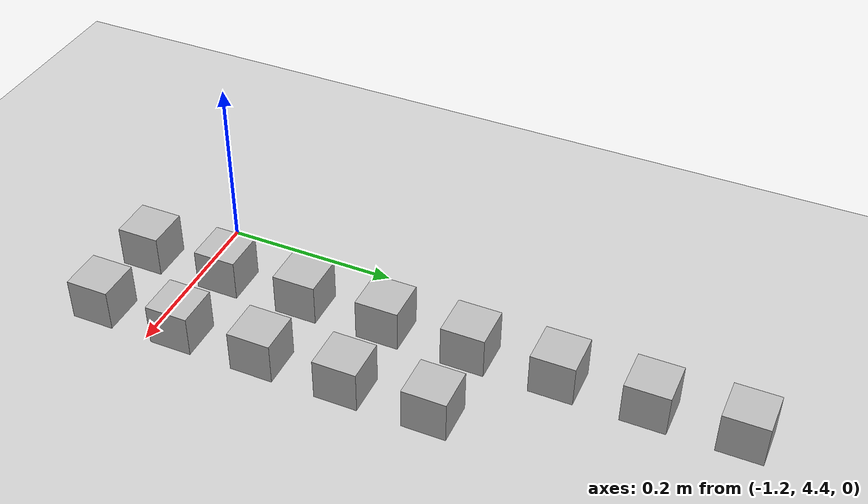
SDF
<sdf version="1.4">
 <world name="default">
  <model name="ground_plane">
   <static>1</static>
   <link name="link">
    <collision name="collision">
     <geometry><plane><normal>0 0 1</normal><size>100 100</size></plane></geometry>
     <surface><friction><ode><mu>100</mu><mu2>50</mu2></ode></friction></surface>
    </collision>
    <visual name="visual">
     <cast_shadows>0</cast_shadows>
     <geometry><plane><normal>0 0 1</normal><size>100 100</size></plane></geometry>
     <material>
      <script><uri>file://media/materials/scripts/gazebo.material</uri><name>Gazebo/Grey</name></script>
     </material>
    </visual>
    <velocity_decay><linear>0</linear><angular>0</angular></velocity_decay>
   </link>
  </model>
  <model name="at0">
   <static>0</static>
   <link name="link">
    <inertial>
     <mass>0.01</mass>
     <inertia><ixx>4e-05</ixx><ixy>0</ixy><ixz>0</ixz><iyy>4e-05</iyy><iyz>0</iyz><izz>4e-05</izz></inertia>
    </inertial>
    <visual name="visual">
     <geometry><box><size>0.05 0.05 0.05</size></box></geometry>
     <material>
      <script>
       <uri>model://at0/materials/scripts</uri>
       <uri>model://at0/materials/textures</uri>
       <name>at0/Diffuse</name>
      </script>
     </material>
    </visual>
    <collision name="collision">
     <geometry><box><size>0.05 0.05 0.05</size></box></geometry>
     <surface><friction><ode><mu>0.8</mu><mu2>0.7</mu2></ode></friction></surface>
    </collision>
    <velocity_decay><linear>0</linear><angular>0</angular></velocity_decay>
   </link>
   <pose>-1.12234 4.33291 0.025 0 -0 0</pose>
  </model>
  <model name="at1">
   <static>0</static>
   <link name="link">
    <inertial>
     <mass>0.01</mass>
     <inertia><ixx>4e-05</ixx><ixy>0</ixy><ixz>0</ixz><iyy>4e-05</iyy><iyz>0</iyz><izz>4e-05</izz></inertia>
    </inertial>
    <visual name="visual">
     <geometry><box><size>0.05 0.05 0.05</size></box></geometry>
     <material>
      <script>
       <uri>model://at0/materials/scripts</uri>
       <uri>model://at0/materials/textures</uri>
       <name>at0/Diffuse</name>
      </script>
     </material>
    </visual>
    <collision name="collision">
     <geometry><box><size>0.05 0.05 0.05</size></box></geometry>
     <surface><friction><ode><mu>0.8</mu><mu2>0.7</mu2></ode></friction></surface>
    </collision>
    <velocity_decay><linear>0</linear><angular>0</angular></velocity_decay>
   </link>
   <pose>-1.02234 4.33291 0.025 0 -0 0</pose>
  </model>
  <model name="at8">
   <static>0</static>
   <link name="link">
    <inertial>
     <mass>0.01</mass>
     <inertia><ixx>4e-05</ixx><ixy>0</ixy><ixz>0</ixz><iyy>4e-05</iyy><iyz>0</iyz><izz>4e-05</izz></inertia>
    </inertial>
    <visual name="visual">
     <geometry><box><size>0.05 0.05 0.05</size></box></geometry>
     <material>
      <script>
       <uri>model://at0/materials/scripts</uri>
       <uri>model://at0/materials/textures</uri>
       <name>at0/Diffuse</name>
      </script>
     </material>
    </visual>
    <collision name="collision">
     <geometry><box><size>0.05 0.05 0.05</size></box></geometry>
     <surface><friction><ode><mu>0.8</mu><mu2>0.7</mu2></ode></friction></surface>
    </collision>
    <velocity_decay><linear>0</linear><angular>0</angular></velocity_decay>
   </link>
   <pose>-1.12234 4.43291 0.025 0 -0 0</pose>
  </model>
  <model name="at9">
   <static>0</static>
   <link name="link">
    <inertial>
     <mass>0.01</mass>
     <inertia><ixx>4e-05</ixx><ixy>0</ixy><ixz>0</ixz><iyy>4e-05</iyy><iyz>0</iyz><izz>4e-05</izz></inertia>
    </inertial>
    <visual name="visual">
     <geometry><box><size>0.05 0.05 0.05</size></box></geometry>
     <material>
      <script>
       <uri>model://at0/materials/scripts</uri>
       <uri>model://at0/materials/textures</uri>
       <name>at0/Diffuse</name>
      </script>
     </material>
    </visual>
    <collision name="collision">
     <geometry><box><size>0.05 0.05 0.05</size></box></geometry>
     <surface><friction><ode><mu>0.8</mu><mu2>0.7</mu2></ode></friction></surface>
    </collision>
    <velocity_decay><linear>0</linear><angular>0</angular></velocity_decay>
   </link>
   <pose>-1.02234 4.43291 0.025 0 -0 0</pose>
  </model>
  <model name="at16">
   <static>0</static>
   <link name="link">
    <inertial>
     <mass>0.01</mass>
     <inertia><ixx>4e-05</ixx><ixy>0</ixy><ixz>0</ixz><iyy>4e-05</iyy><iyz>0</iyz><izz>4e-05</izz></inertia>
    </inertial>
    <visual name="visual">
     <geometry><box><size>0.05 0.05 0.05</size></box></geometry>
     <material>
      <script>
       <uri>model://at0/materials/scripts</uri>
       <uri>model://at0/materials/textures</uri>
       <name>at0/Diffuse</name>
      </script>
     </material>
    </visual>
    <collision name="collision">
     <geometry><box><size>0.05 0.05 0.05</size></box></geometry>
     <surface><friction><ode><mu>0.8</mu><mu2>0.7</mu2></ode></friction></surface>
    </collision>
    <velocity_decay><linear>0</linear><angular>0</angular></velocity_decay>
   </link>
   <pose>-1.12234 4.53291 0.025 0 -0 0</pose>
  </model>
  <model name="at17">
   <static>0</static>
   <link name="link">
    <inertial>
     <mass>0.01</mass>
     <inertia><ixx>4e-05</ixx><ixy>0</ixy><ixz>0</ixz><iyy>4e-05</iyy><iyz>0</iyz><izz>4e-05</izz></inertia>
    </inertial>
    <visual name="visual">
     <geometry><box><size>0.05 0.05 0.05</size></box></geometry>
     <material>
      <script>
       <uri>model://at0/materials/scripts</uri>
       <uri>model://at0/materials/textures</uri>
       <name>at0/Diffuse</name>
      </script>
     </material>
    </visual>
    <collision name="collision">
     <geometry><box><size>0.05 0.05 0.05</size></box></geometry>
     <surface><friction><ode><mu>0.8</mu><mu2>0.7</mu2></ode></friction></surface>
    </collision>
    <velocity_decay><linear>0</linear><angular>0</angular></velocity_decay>
   </link>
   <pose>-1.02234 4.53291 0.025 0 -0 0</pose>
  </model>
  <model name="at24">
   <static>0</static>
   <link name="link">
    <inertial>
     <mass>0.01</mass>
     <inertia><ixx>4e-05</ixx><ixy>0</ixy><ixz>0</ixz><iyy>4e-05</iyy><iyz>0</iyz><izz>4e-05</izz></inertia>
    </inertial>
    <visual name="visual">
     <geometry><box><size>0.05 0.05 0.05</size></box></geometry>
     <material>
      <script>
       <uri>model://at0/materials/scripts</uri>
       <uri>model://at0/materials/textures</uri>
       <name>at0/Diffuse</name>
      </script>
     </material>
    </visual>
    <collision name="collision">
     <geometry><box><size>0.05 0.05 0.05</size></box></geometry>
     <surface><friction><ode><mu>0.8</mu><mu2>0.7</mu2></ode></friction></surface>
    </collision>
    <velocity_decay><linear>0</linear><angular>0</angular></velocity_decay>
   </link>
   <pose>-1.12234 4.63291 0.025 0 -0 0</pose>
  </model>
  <model name="at25">
   <static>0</static>
   <link name="link">
    <inertial>
     <mass>0.01</mass>
     <inertia><ixx>4e-05</ixx><ixy>0</ixy><ixz>0</ixz><iyy>4e-05</iyy><iyz>0</iyz><izz>4e-05</izz></inertia>
    </inertial>
    <visual name="visual">
     <geometry><box><size>0.05 0.05 0.05</size></box></geometry>
     <material>
      <script>
       <uri>model://at0/materials/scripts</uri>
       <uri>model://at0/materials/textures</uri>
       <name>at0/Diffuse</name>
      </script>
     </material>
    </visual>
    <collision name="collision">
     <geometry><box><size>0.05 0.05 0.05</size></box></geometry>
     <surface><friction><ode><mu>0.8</mu><mu2>0.7</mu2></ode></friction></surface>
    </collision>
    <velocity_decay><linear>0</linear><angular>0</angular></velocity_decay>
   </link>
   <pose>-1.02234 4.63291 0.025 0 -0 0</pose>
  </model>
  <model name="at32">
   <static>0</static>
   <link name="link">
    <inertial>
     <mass>0.01</mass>
     <inertia><ixx>4e-05</ixx><ixy>0</ixy><ixz>0</ixz><iyy>4e-05</iyy><iyz>0</iyz><izz>4e-05</izz></inertia>
    </inertial>
    <visual name="visual">
     <geometry><box><size>0.05 0.05 0.05</size></box></geometry>
     <material>
      <script>
       <uri>model://at0/materials/scripts</uri>
       <uri>model://at0/materials/textures</uri>
       <name>at0/Diffuse</name>
      </script>
     </material>
    </visual>
    <collision name="collision">
     <geometry><box><size>0.05 0.05 0.05</size></box></geometry>
     <surface><friction><ode><mu>0.8</mu><mu2>0.7</mu2></ode></friction></surface>
    </collision>
    <velocity_decay><linear>0</linear><angular>0</angular></velocity_decay>
   </link>
   <pose>-1.12234 4.73291 0.025 0 -0 0</pose>
  </model>
  <model name="at33">
   <static>0</static>
   <link name="link">
    <inertial>
     <mass>0.01</mass>
     <inertia><ixx>4e-05</ixx><ixy>0</ixy><ixz>0</ixz><iyy>4e-05</iyy><iyz>0</iyz><izz>4e-05</izz></inertia>
    </inertial>
    <visual name="visual">
     <geometry><box><size>0.05 0.05 0.05</size></box></geometry>
     <material>
      <script>
       <uri>model://at0/materials/scripts</uri>
       <uri>model://at0/materials/textures</uri>
       <name>at0/Diffuse</name>
      </script>
     </material>
    </visual>
    <collision name="collision">
     <geometry><box><size>0.05 0.05 0.05</size></box></geometry>
     <surface><friction><ode><mu>0.8</mu><mu2>0.7</mu2></ode></friction></surface>
    </collision>
    <velocity_decay><linear>0</linear><angular>0</angular></velocity_decay>
   </link>
   <pose>-1.02234 4.73291 0.025 0 -0 0</pose>
  </model>
  <model name="at40">
   <static>0</static>
   <link name="link">
    <inertial>
     <mass>0.01</mass>
     <inertia><ixx>4e-05</ixx><ixy>0</ixy><ixz>0</ixz><iyy>4e-05</iyy><iyz>0</iyz><izz>4e-05</izz></inertia>
    </inertial>
    <visual name="visual">
     <geometry><box><size>0.05 0.05 0.05</size></box></geometry>
     <material>
      <script>
       <uri>model://at0/materials/scripts</uri>
       <uri>model://at0/materials/textures</uri>
       <name>at0/Diffuse</name>
      </script>
     </material>
    </visual>
    <collision name="collision">
     <geometry><box><size>0.05 0.05 0.05</size></box></geometry>
     <surface><friction><ode><mu>0.8</mu><mu2>0.7</mu2></ode></friction></surface>
    </collision>
    <velocity_decay><linear>0</linear><angular>0</angular></velocity_decay>
   </link>
   <pose>-1.12234 4.83291 0.025 0 -0 0</pose>
  </model>
  <model name="at48">
   <static>0</static>
   <link name="link">
    <inertial>
     <mass>0.01</mass>
     <inertia><ixx>4e-05</ixx><ixy>0</ixy><ixz>0</ixz><iyy>4e-05</iyy><iyz>0</iyz><izz>4e-05</izz></inertia>
    </inertial>
    <visual name="visual">
     <geometry><box><size>0.05 0.05 0.05</size></box></geometry>
     <material>
      <script>
       <uri>model://at0/materials/scripts</uri>
       <uri>model://at0/materials/textures</uri>
       <name>at0/Diffuse</name>
      </script>
     </material>
    </visual>
    <collision name="collision">
     <geometry><box><size>0.05 0.05 0.05</size></box></geometry>
     <surface><friction><ode><mu>0.8</mu><mu2>0.7</mu2></ode></friction></surface>
    </collision>
    <velocity_decay><linear>0</linear><angular>0</angular></velocity_decay>
   </link>
   <pose>-1.12234 4.93291 0.025 0 -0 0</pose>
  </model>
  <model name="at56">
   <static>0</static>
   <link name="link">
    <inertial>
     <mass>0.01</mass>
     <inertia><ixx>4e-05</ixx><ixy>0</ixy><ixz>0</ixz><iyy>4e-05</iyy><iyz>0</iyz><izz>4e-05</izz></inertia>
    </inertial>
    <visual name="visual">
     <geometry><box><size>0.05 0.05 0.05</size></box></geometry>
     <material>
      <script>
       <uri>model://at0/materials/scripts</uri>
       <uri>model://at0/materials/textures</uri>
       <name>at0/Diffuse</name>
      </script>
     </material>
    </visual>
    <collision name="collision">
     <geometry><box><size>0.05 0.05 0.05</size></box></geometry>
     <surface><friction><ode><mu>0.8</mu><mu2>0.7</mu2></ode></friction></surface>
    </collision>
    <velocity_decay><linear>0</linear><angular>0</angular></velocity_decay>
   </link>
   <pose>-1.12234 5.03291 0.025 0 -0 0</pose>
  </model>
 </world>
</sdf>
